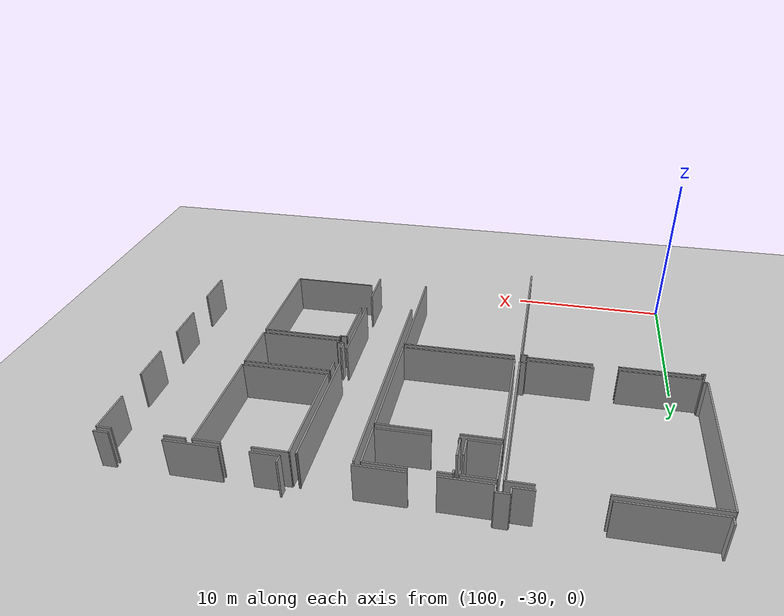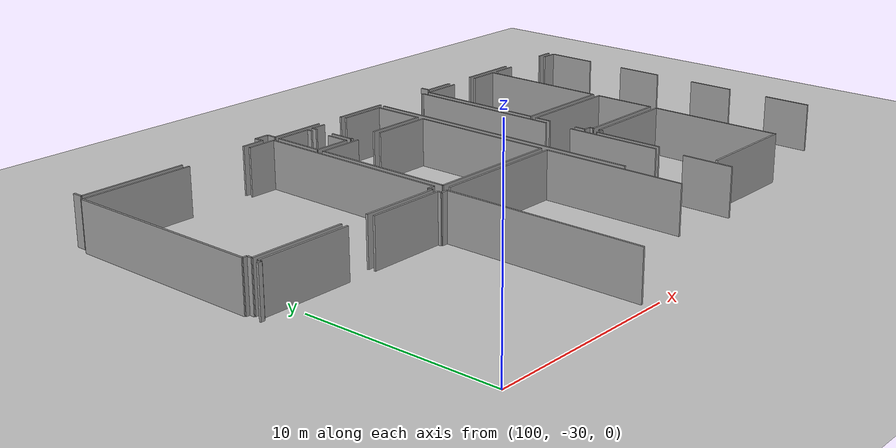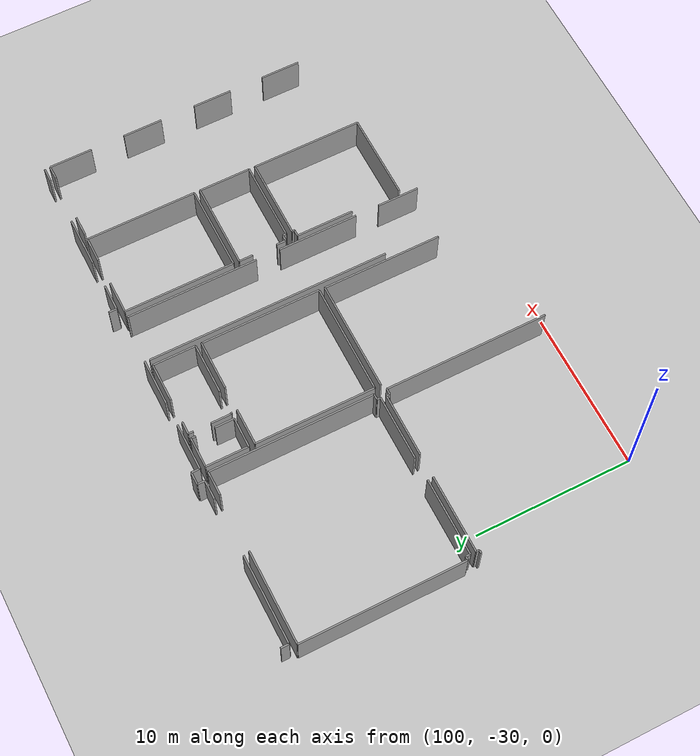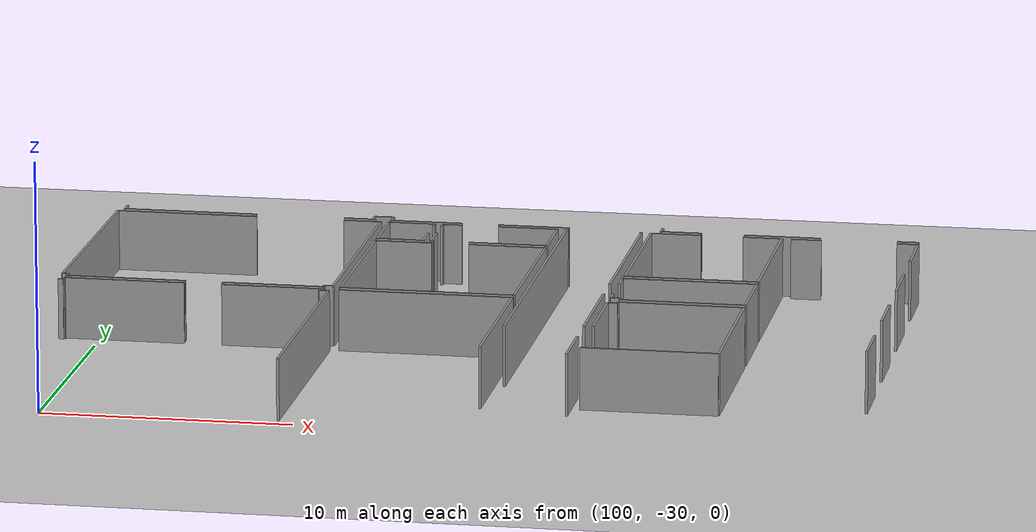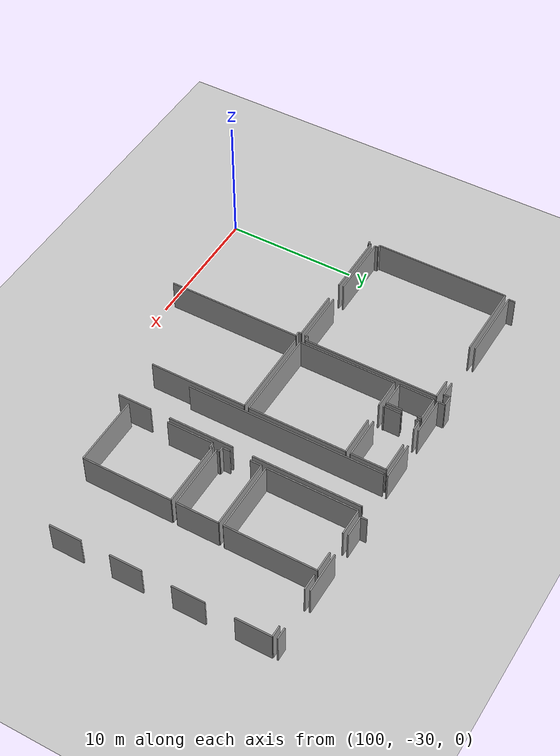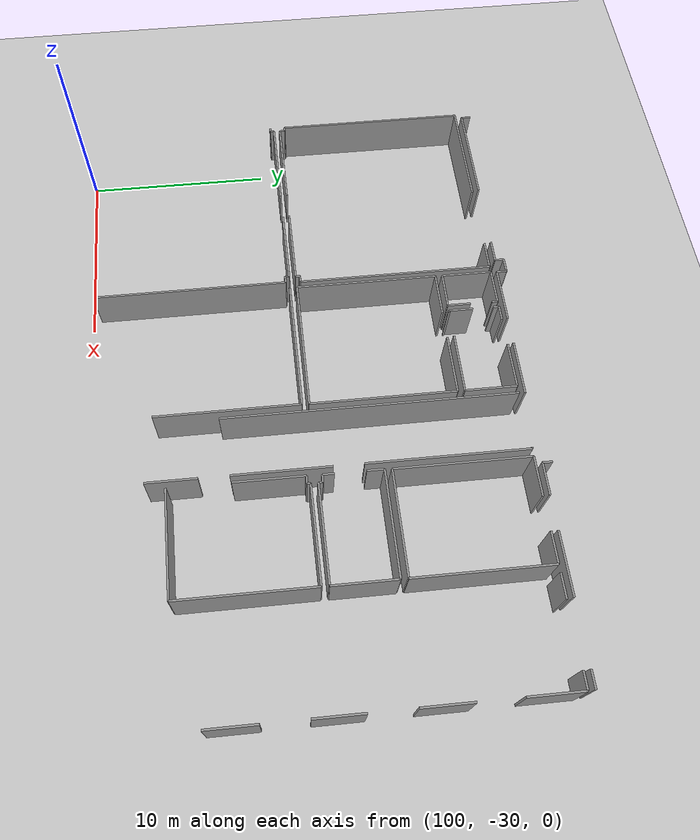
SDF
<sdf version="1.6">
 <world name="default">
  <model name="ground_plane">
   <static>1</static>
   <link name="link">
    <collision name="collision">
     <geometry><plane><normal>0 0 1</normal><size>100 100</size></plane></geometry>
     <surface><friction><ode><mu>100</mu><mu2>50</mu2></ode></friction></surface>
    </collision>
    <visual name="visual">
     <cast_shadows>0</cast_shadows>
     <geometry><plane><normal>0 0 1</normal><size>100 100</size></plane></geometry>
     <material>
      <script><uri>file://media/materials/scripts/gazebo.material</uri><name>Gazebo/Grey</name></script>
     </material>
    </visual>
   </link>
  </model>
  <model name="50015847">
   <static>1</static>
   <link name="Wall_845">
    <collision name="Wall_845_Collision">
     <geometry><box><size>1.25591091676 0.1 2.5</size></box></geometry>
     <pose>0.627955458382 0 1.25 0 0 0</pose>
    </collision>
    <visual name="Wall_845_Visual">
     <pose>0.627955458382 0 1.25 0 0 0</pose>
     <geometry><box><size>1.25591091676 0.1 2.5</size></box></geometry>
     <material>
      <script><uri>file://media/materials/scripts/gazebo.material</uri><name>Gazebo/Grey</name></script>
      <ambient>1 1 1 1</ambient>
     </material>
    </visual>
    <pose>258.724258911 -51.9181878273 0 0 0 0.0</pose>
   </link>
   <link name="Wall_846">
    <collision name="Wall_846_Collision">
     <geometry><box><size>0.869476788529 0.1 2.5</size></box></geometry>
     <pose>0.434738394265 0 1.25 0 0 0</pose>
    </collision>
    <visual name="Wall_846_Visual">
     <pose>0.434738394265 0 1.25 0 0 0</pose>
     <geometry><box><size>0.869476788529 0.1 2.5</size></box></geometry>
     <material>
      <script><uri>file://media/materials/scripts/gazebo.material</uri><name>Gazebo/Grey</name></script>
      <ambient>1 1 1 1</ambient>
     </material>
    </visual>
    <pose>263.064015864 -51.9181878273 0 0 0 0.0</pose>
   </link>
   <link name="Wall_847">
    <collision name="Wall_847_Collision">
     <geometry><box><size>2.7080896934 0.1 2.5</size></box></geometry>
     <pose>1.3540448467 0 1.25 0 0 0</pose>
    </collision>
    <visual name="Wall_847_Visual">
     <pose>1.3540448467 0 1.25 0 0 0</pose>
     <geometry><box><size>2.7080896934 0.1 2.5</size></box></geometry>
     <material>
      <script><uri>file://media/materials/scripts/gazebo.material</uri><name>Gazebo/Grey</name></script>
      <ambient>1 1 1 1</ambient>
     </material>
    </visual>
    <pose>263.933492653 -51.9181878273 0 0 0 -1.57079632679</pose>
   </link>
   <link name="Wall_848">
    <collision name="Wall_848_Collision">
     <geometry><box><size>2.50394061118 0.1 2.5</size></box></geometry>
     <pose>1.25197030559 0 1.25 0 0 0</pose>
    </collision>
    <visual name="Wall_848_Visual">
     <pose>1.25197030559 0 1.25 0 0 0</pose>
     <geometry><box><size>2.50394061118 0.1 2.5</size></box></geometry>
     <material>
      <script><uri>file://media/materials/scripts/gazebo.material</uri><name>Gazebo/Grey</name></script>
      <ambient>1 1 1 1</ambient>
     </material>
    </visual>
    <pose>263.933492653 -56.7778512229 0 0 0 -1.57079632679</pose>
   </link>
   <link name="Wall_849">
    <collision name="Wall_849_Collision">
     <geometry><box><size>2.44851782173 0.1 2.5</size></box></geometry>
     <pose>1.22425891087 0 1.25 0 0 0</pose>
    </collision>
    <visual name="Wall_849_Visual">
     <pose>1.22425891087 0 1.25 0 0 0</pose>
     <geometry><box><size>2.44851782173 0.1 2.5</size></box></geometry>
     <material>
      <script><uri>file://media/materials/scripts/gazebo.material</uri><name>Gazebo/Grey</name></script>
      <ambient>1 1 1 1</ambient>
     </material>
    </visual>
    <pose>263.933492653 -61.5068388671 0 0 0 -1.57079632679</pose>
   </link>
   <link name="Wall_850">
    <collision name="Wall_850_Collision">
     <geometry><box><size>2.48563583668 0.1 2.5</size></box></geometry>
     <pose>1.24281791834 0 1.25 0 0 0</pose>
    </collision>
    <visual name="Wall_850_Visual">
     <pose>1.24281791834 0 1.25 0 0 0</pose>
     <geometry><box><size>2.48563583668 0.1 2.5</size></box></geometry>
     <material>
      <script><uri>file://media/materials/scripts/gazebo.material</uri><name>Gazebo/Grey</name></script>
      <ambient>1 1 1 1</ambient>
     </material>
    </visual>
    <pose>263.933492653 -66.1529465602 0 0 0 -1.57079632679</pose>
   </link>
   <link name="Wall_853">
    <collision name="Wall_853_Collision">
     <geometry><box><size>6.98225453806 0.1 2.5</size></box></geometry>
     <pose>3.49112726903 0 1.25 0 0 0</pose>
    </collision>
    <visual name="Wall_853_Visual">
     <pose>3.49112726903 0 1.25 0 0 0</pose>
     <geometry><box><size>6.98225453806 0.1 2.5</size></box></geometry>
     <material>
      <script><uri>file://media/materials/scripts/gazebo.material</uri><name>Gazebo/Grey</name></script>
      <ambient>1 1 1 1</ambient>
     </material>
    </visual>
    <pose>252.953170285 -58.9019677633 0 0 0 1.57079632679</pose>
   </link>
   <link name="Wall_854">
    <collision name="Wall_854_Collision">
     <geometry><box><size>2.07454110947 0.1 2.5</size></box></geometry>
     <pose>1.03727055474 0 1.25 0 0 0</pose>
    </collision>
    <visual name="Wall_854_Visual">
     <pose>1.03727055474 0 1.25 0 0 0</pose>
     <geometry><box><size>2.07454110947 0.1 2.5</size></box></geometry>
     <material>
      <script><uri>file://media/materials/scripts/gazebo.material</uri><name>Gazebo/Grey</name></script>
      <ambient>1 1 1 1</ambient>
     </material>
    </visual>
    <pose>252.953170285 -51.9197132252 0 0 0 0.0</pose>
   </link>
   <link name="Wall_855">
    <collision name="Wall_855_Collision">
     <geometry><box><size>1.5864137896 0.1 2.5</size></box></geometry>
     <pose>0.793206894798 0 1.25 0 0 0</pose>
    </collision>
    <visual name="Wall_855_Visual">
     <pose>0.793206894798 0 1.25 0 0 0</pose>
     <geometry><box><size>1.5864137896 0.1 2.5</size></box></geometry>
     <material>
      <script><uri>file://media/materials/scripts/gazebo.material</uri><name>Gazebo/Grey</name></script>
      <ambient>1 1 1 1</ambient>
     </material>
    </visual>
    <pose>256.753953323 -51.9197132252 0 0 0 0.0</pose>
   </link>
   <link name="Wall_856">
    <collision name="Wall_856_Collision">
     <geometry><box><size>6.97716987848 0.1 2.5</size></box></geometry>
     <pose>3.48858493924 0 1.25 0 0 0</pose>
    </collision>
    <visual name="Wall_856_Visual">
     <pose>3.48858493924 0 1.25 0 0 0</pose>
     <geometry><box><size>6.97716987848 0.1 2.5</size></box></geometry>
     <material>
      <script><uri>file://media/materials/scripts/gazebo.material</uri><name>Gazebo/Grey</name></script>
      <ambient>1 1 1 1</ambient>
     </material>
    </visual>
    <pose>258.340367112 -51.9197132252 0 0 0 -1.57079632679</pose>
   </link>
   <link name="Wall_857">
    <collision name="Wall_857_Collision">
     <geometry><box><size>5.38719922673 0.1 2.5</size></box></geometry>
     <pose>2.69359961336 0 1.25 0 0 0</pose>
    </collision>
    <visual name="Wall_857_Visual">
     <pose>2.69359961336 0 1.25 0 0 0</pose>
     <geometry><box><size>5.38719922673 0.1 2.5</size></box></geometry>
     <material>
      <script><uri>file://media/materials/scripts/gazebo.material</uri><name>Gazebo/Grey</name></script>
      <ambient>1 1 1 1</ambient>
     </material>
    </visual>
    <pose>258.340367112 -58.8968831037 0 0 0 -3.14064881244</pose>
   </link>
   <link name="Wall_858">
    <collision name="Wall_858_Collision">
     <geometry><box><size>0.592362841308 0.1 2.5</size></box></geometry>
     <pose>0.296181420654 0 1.25 0 0 0</pose>
    </collision>
    <visual name="Wall_858_Visual">
     <pose>0.296181420654 0 1.25 0 0 0</pose>
     <geometry><box><size>0.592362841308 0.1 2.5</size></box></geometry>
     <material>
      <script><uri>file://media/materials/scripts/gazebo.material</uri><name>Gazebo/Grey</name></script>
      <ambient>1 1 1 1</ambient>
     </material>
    </visual>
    <pose>252.925204658 -62.311486246 0 0 0 1.57079632679</pose>
   </link>
   <link name="Wall_859">
    <collision name="Wall_859_Collision">
     <geometry><box><size>0.874561448111 0.1 2.5</size></box></geometry>
     <pose>0.437280724056 0 1.25 0 0 0</pose>
    </collision>
    <visual name="Wall_859_Visual">
     <pose>0.437280724056 0 1.25 0 0 0</pose>
     <geometry><box><size>0.874561448111 0.1 2.5</size></box></geometry>
     <material>
      <script><uri>file://media/materials/scripts/gazebo.material</uri><name>Gazebo/Grey</name></script>
      <ambient>1 1 1 1</ambient>
     </material>
    </visual>
    <pose>252.925204658 -60.1423704683 0 0 0 1.57079632679</pose>
   </link>
   <link name="Wall_860">
    <collision name="Wall_860_Collision">
     <geometry><box><size>5.41516245487 0.1 2.5</size></box></geometry>
     <pose>2.70758122744 0 1.25 0 0 0</pose>
    </collision>
    <visual name="Wall_860_Visual">
     <pose>2.70758122744 0 1.25 0 0 0</pose>
     <geometry><box><size>5.41516245487 0.1 2.5</size></box></geometry>
     <material>
      <script><uri>file://media/materials/scripts/gazebo.material</uri><name>Gazebo/Grey</name></script>
      <ambient>1 1 1 1</ambient>
     </material>
    </visual>
    <pose>252.925204658 -59.2678090202 0 0 0 0.0</pose>
   </link>
   <link name="Wall_861">
    <collision name="Wall_861_Collision">
     <geometry><box><size>3.27223267402 0.1 2.5</size></box></geometry>
     <pose>1.63611633701 0 1.25 0 0 0</pose>
    </collision>
    <visual name="Wall_861_Visual">
     <pose>1.63611633701 0 1.25 0 0 0</pose>
     <geometry><box><size>3.27223267402 0.1 2.5</size></box></geometry>
     <material>
      <script><uri>file://media/materials/scripts/gazebo.material</uri><name>Gazebo/Grey</name></script>
      <ambient>1 1 1 1</ambient>
     </material>
    </visual>
    <pose>258.340367112 -59.2678090202 0 0 0 -1.57079632679</pose>
   </link>
   <link name="Wall_862">
    <collision name="Wall_862_Collision">
     <geometry><box><size>5.02110133727 0.1 2.5</size></box></geometry>
     <pose>2.51055066863 0 1.25 0 0 0</pose>
    </collision>
    <visual name="Wall_862_Visual">
     <pose>2.51055066863 0 1.25 0 0 0</pose>
     <geometry><box><size>5.02110133727 0.1 2.5</size></box></geometry>
     <material>
      <script><uri>file://media/materials/scripts/gazebo.material</uri><name>Gazebo/Grey</name></script>
      <ambient>1 1 1 1</ambient>
     </material>
    </visual>
    <pose>258.340367112 -62.5400416942 0 0 0 3.14159265359</pose>
   </link>
   <link name="Wall_863">
    <collision name="Wall_863_Collision">
     <geometry><box><size>0.213047236488 0.1 2.5</size></box></geometry>
     <pose>0.106523618244 0 1.25 0 0 0</pose>
    </collision>
    <visual name="Wall_863_Visual">
     <pose>0.106523618244 0 1.25 0 0 0</pose>
     <geometry><box><size>0.213047236488 0.1 2.5</size></box></geometry>
     <material>
      <script><uri>file://media/materials/scripts/gazebo.material</uri><name>Gazebo/Grey</name></script>
      <ambient>1 1 1 1</ambient>
     </material>
    </visual>
    <pose>253.319265775 -62.5400416942 0 0 0 1.57079632679</pose>
   </link>
   <link name="Wall_864">
    <collision name="Wall_864_Collision">
     <geometry><box><size>0.394366161126 0.1 2.5</size></box></geometry>
     <pose>0.197183080563 0 1.25 0 0 0</pose>
    </collision>
    <visual name="Wall_864_Visual">
     <pose>0.197183080563 0 1.25 0 0 0</pose>
     <geometry><box><size>0.394366161126 0.1 2.5</size></box></geometry>
     <material>
      <script><uri>file://media/materials/scripts/gazebo.material</uri><name>Gazebo/Grey</name></script>
      <ambient>1 1 1 1</ambient>
     </material>
    </visual>
    <pose>253.319265775 -62.3269944577 0 0 0 3.10225811366</pose>
   </link>
   <link name="Wall_866">
    <collision name="Wall_866_Collision">
     <geometry><box><size>3.63070117456 0.1 2.5</size></box></geometry>
     <pose>1.81535058728 0 1.25 0 0 0</pose>
    </collision>
    <visual name="Wall_866_Visual">
     <pose>1.81535058728 0 1.25 0 0 0</pose>
     <geometry><box><size>3.63070117456 0.1 2.5</size></box></geometry>
     <material>
      <script><uri>file://media/materials/scripts/gazebo.material</uri><name>Gazebo/Grey</name></script>
      <ambient>1 1 1 1</ambient>
     </material>
    </visual>
    <pose>252.912493009 -66.7181064728 0 0 0 1.57079632679</pose>
   </link>
   <link name="Wall_867">
    <collision name="Wall_867_Collision">
     <geometry><box><size>0.406772766563 0.1 2.5</size></box></geometry>
     <pose>0.203386383282 0 1.25 0 0 0</pose>
    </collision>
    <visual name="Wall_867_Visual">
     <pose>0.203386383282 0 1.25 0 0 0</pose>
     <geometry><box><size>0.406772766563 0.1 2.5</size></box></geometry>
     <material>
      <script><uri>file://media/materials/scripts/gazebo.material</uri><name>Gazebo/Grey</name></script>
      <ambient>1 1 1 1</ambient>
     </material>
    </visual>
    <pose>252.912493009 -63.0874052982 0 0 0 0.0</pose>
   </link>
   <link name="Wall_868">
    <collision name="Wall_868_Collision">
     <geometry><box><size>0.163471805563 0.1 2.5</size></box></geometry>
     <pose>0.0817359027813 0 1.25 0 0 0</pose>
    </collision>
    <visual name="Wall_868_Visual">
     <pose>0.0817359027813 0 1.25 0 0 0</pose>
     <geometry><box><size>0.163471805563 0.1 2.5</size></box></geometry>
     <material>
      <script><uri>file://media/materials/scripts/gazebo.material</uri><name>Gazebo/Grey</name></script>
      <ambient>1 1 1 1</ambient>
     </material>
    </visual>
    <pose>253.319265775 -63.0874052982 0 0 0 1.57079632679</pose>
   </link>
   <link name="Wall_869">
    <collision name="Wall_869_Collision">
     <geometry><box><size>5.01601667768 0.1 2.5</size></box></geometry>
     <pose>2.50800833884 0 1.25 0 0 0</pose>
    </collision>
    <visual name="Wall_869_Visual">
     <pose>2.50800833884 0 1.25 0 0 0</pose>
     <geometry><box><size>5.01601667768 0.1 2.5</size></box></geometry>
     <material>
      <script><uri>file://media/materials/scripts/gazebo.material</uri><name>Gazebo/Grey</name></script>
      <ambient>1 1 1 1</ambient>
     </material>
    </visual>
    <pose>253.319265775 -62.9239334927 0 0 0 0.0</pose>
   </link>
   <link name="Wall_870">
    <collision name="Wall_870_Collision">
     <geometry><box><size>6.96191589973 0.1 2.5</size></box></geometry>
     <pose>3.48095794987 0 1.25 0 0 0</pose>
    </collision>
    <visual name="Wall_870_Visual">
     <pose>3.48095794987 0 1.25 0 0 0</pose>
     <geometry><box><size>6.96191589973 0.1 2.5</size></box></geometry>
     <material>
      <script><uri>file://media/materials/scripts/gazebo.material</uri><name>Gazebo/Grey</name></script>
      <ambient>1 1 1 1</ambient>
     </material>
    </visual>
    <pose>258.335282453 -62.9239334927 0 0 0 -1.57079632679</pose>
   </link>
   <link name="Wall_871">
    <collision name="Wall_871_Collision">
     <geometry><box><size>5.42280682217 0.1 2.5</size></box></geometry>
     <pose>2.71140341108 0 1.25 0 0 0</pose>
    </collision>
    <visual name="Wall_871_Visual">
     <pose>2.71140341108 0 1.25 0 0 0</pose>
     <geometry><box><size>5.42280682217 0.1 2.5</size></box></geometry>
     <material>
      <script><uri>file://media/materials/scripts/gazebo.material</uri><name>Gazebo/Grey</name></script>
      <ambient>1 1 1 1</ambient>
     </material>
    </visual>
    <pose>258.335282453 -69.8858493924 0 0 0 -3.13906101343</pose>
   </link>
   <link name="Wall_892">
    <collision name="Wall_892_Collision">
     <geometry><box><size>6.99649158489 0.1 2.5</size></box></geometry>
     <pose>3.49824579244 0 1.25 0 0 0</pose>
    </collision>
    <visual name="Wall_892_Visual">
     <pose>3.49824579244 0 1.25 0 0 0</pose>
     <geometry><box><size>6.99649158489 0.1 2.5</size></box></geometry>
     <material>
      <script><uri>file://media/materials/scripts/gazebo.material</uri><name>Gazebo/Grey</name></script>
      <ambient>1 1 1 1</ambient>
     </material>
    </visual>
    <pose>242.07199878 -62.9417298012 0 0 0 0.0</pose>
   </link>
   <link name="Wall_893">
    <collision name="Wall_893_Collision">
     <geometry><box><size>7.53495703463 0.1 2.5</size></box></geometry>
     <pose>3.76747851731 0 1.25 0 0 0</pose>
    </collision>
    <visual name="Wall_893_Visual">
     <pose>3.76747851731 0 1.25 0 0 0</pose>
     <geometry><box><size>7.53495703463 0.1 2.5</size></box></geometry>
     <material>
      <script><uri>file://media/materials/scripts/gazebo.material</uri><name>Gazebo/Grey</name></script>
      <ambient>1 1 1 1</ambient>
     </material>
    </visual>
    <pose>249.068490365 -62.9417298012 0 0 0 -1.57079632679</pose>
   </link>
   <link name="Wall_896">
    <collision name="Wall_896_Collision">
     <geometry><box><size>7.55148217827 0.1 2.5</size></box></geometry>
     <pose>3.77574108913 0 1.25 0 0 0</pose>
    </collision>
    <visual name="Wall_896_Visual">
     <pose>3.77574108913 0 1.25 0 0 0</pose>
     <geometry><box><size>7.55148217827 0.1 2.5</size></box></geometry>
     <material>
      <script><uri>file://media/materials/scripts/gazebo.material</uri><name>Gazebo/Grey</name></script>
      <ambient>1 1 1 1</ambient>
     </material>
    </visual>
    <pose>242.06437179 -62.5489398485 0 0 0 1.57079632679</pose>
   </link>
   <link name="Wall_897">
    <collision name="Wall_897_Collision">
     <geometry><box><size>2.33640107795 0.1 2.5</size></box></geometry>
     <pose>1.16820053897 0 1.25 0 0 0</pose>
    </collision>
    <visual name="Wall_897_Visual">
     <pose>1.16820053897 0 1.25 0 0 0</pose>
     <geometry><box><size>2.33640107795 0.1 2.5</size></box></geometry>
     <material>
      <script><uri>file://media/materials/scripts/gazebo.material</uri><name>Gazebo/Grey</name></script>
      <ambient>1 1 1 1</ambient>
     </material>
    </visual>
    <pose>242.06437179 -54.9974576702 0 0 0 0.0</pose>
   </link>
   <link name="Wall_898">
    <collision name="Wall_898_Collision">
     <geometry><box><size>3.14994661107 0.1 2.5</size></box></geometry>
     <pose>1.57497330554 0 1.25 0 0 0</pose>
    </collision>
    <visual name="Wall_898_Visual">
     <pose>1.57497330554 0 1.25 0 0 0</pose>
     <geometry><box><size>3.14994661107 0.1 2.5</size></box></geometry>
     <material>
      <script><uri>file://media/materials/scripts/gazebo.material</uri><name>Gazebo/Grey</name></script>
      <ambient>1 1 1 1</ambient>
     </material>
    </visual>
    <pose>245.931255402 -54.9974576702 0 0 0 0.0</pose>
   </link>
   <link name="Wall_899">
    <collision name="Wall_899_Collision">
     <geometry><box><size>7.57563431128 0.1 2.5</size></box></geometry>
     <pose>3.78781715564 0 1.25 0 0 0</pose>
    </collision>
    <visual name="Wall_899_Visual">
     <pose>3.78781715564 0 1.25 0 0 0</pose>
     <geometry><box><size>7.57563431128 0.1 2.5</size></box></geometry>
     <material>
      <script><uri>file://media/materials/scripts/gazebo.material</uri><name>Gazebo/Grey</name></script>
      <ambient>1 1 1 1</ambient>
     </material>
    </visual>
    <pose>249.081202014 -54.9974576702 0 0 0 -1.57079632679</pose>
   </link>
   <link name="Wall_900">
    <collision name="Wall_900_Collision">
     <geometry><box><size>7.01687178926 0.1 2.5</size></box></geometry>
     <pose>3.50843589463 0 1.25 0 0 0</pose>
    </collision>
    <visual name="Wall_900_Visual">
     <pose>3.50843589463 0 1.25 0 0 0</pose>
     <geometry><box><size>7.01687178926 0.1 2.5</size></box></geometry>
     <material>
      <script><uri>file://media/materials/scripts/gazebo.material</uri><name>Gazebo/Grey</name></script>
      <ambient>1 1 1 1</ambient>
     </material>
    </visual>
    <pose>249.081202014 -62.5730919815 0 0 0 3.1381506382</pose>
   </link>
   <link name="Wall_901">
    <collision name="Wall_901_Collision">
     <geometry><box><size>1.27904611786 0.1 2.5</size></box></geometry>
     <pose>0.639523058931 0 1.25 0 0 0</pose>
    </collision>
    <visual name="Wall_901_Visual">
     <pose>0.639523058931 0 1.25 0 0 0</pose>
     <geometry><box><size>1.27904611786 0.1 2.5</size></box></geometry>
     <material>
      <script><uri>file://media/materials/scripts/gazebo.material</uri><name>Gazebo/Grey</name></script>
      <ambient>1 1 1 1</ambient>
     </material>
    </visual>
    <pose>244.309248996 -54.6161082016 0 0 0 1.57079632679</pose>
   </link>
   <link name="Wall_902">
    <collision name="Wall_902_Collision">
     <geometry><box><size>0.301520313215 0.1 2.5</size></box></geometry>
     <pose>0.150760156608 0 1.25 0 0 0</pose>
    </collision>
    <visual name="Wall_902_Visual">
     <pose>0.150760156608 0 1.25 0 0 0</pose>
     <geometry><box><size>0.301520313215 0.1 2.5</size></box></geometry>
     <material>
      <script><uri>file://media/materials/scripts/gazebo.material</uri><name>Gazebo/Grey</name></script>
      <ambient>1 1 1 1</ambient>
     </material>
    </visual>
    <pose>244.309248996 -52.2316570906 0 0 0 1.57079632679</pose>
   </link>
   <link name="Wall_903">
    <collision name="Wall_903_Collision">
     <geometry><box><size>0.816087862918 0.1 2.5</size></box></geometry>
     <pose>0.408043931459 0 1.25 0 0 0</pose>
    </collision>
    <visual name="Wall_903_Visual">
     <pose>0.408043931459 0 1.25 0 0 0</pose>
     <geometry><box><size>0.816087862918 0.1 2.5</size></box></geometry>
     <material>
      <script><uri>file://media/materials/scripts/gazebo.material</uri><name>Gazebo/Grey</name></script>
      <ambient>1 1 1 1</ambient>
     </material>
    </visual>
    <pose>244.309248996 -51.9301367773 0 0 0 0.0</pose>
   </link>
   <link name="Wall_904">
    <collision name="Wall_904_Collision">
     <geometry><box><size>2.43809426959 0.1 2.5</size></box></geometry>
     <pose>1.21904713479 0 1.25 0 0 0</pose>
    </collision>
    <visual name="Wall_904_Visual">
     <pose>1.21904713479 0 1.25 0 0 0</pose>
     <geometry><box><size>2.43809426959 0.1 2.5</size></box></geometry>
     <material>
      <script><uri>file://media/materials/scripts/gazebo.material</uri><name>Gazebo/Grey</name></script>
      <ambient>1 1 1 1</ambient>
     </material>
    </visual>
    <pose>246.645650074 -51.9301367773 0 0 0 0.0</pose>
   </link>
   <link name="Wall_905">
    <collision name="Wall_905_Collision">
     <geometry><box><size>2.69842884019 0.1 2.5</size></box></geometry>
     <pose>1.34921442009 0 1.25 0 0 0</pose>
    </collision>
    <visual name="Wall_905_Visual">
     <pose>1.34921442009 0 1.25 0 0 0</pose>
     <geometry><box><size>2.69842884019 0.1 2.5</size></box></geometry>
     <material>
      <script><uri>file://media/materials/scripts/gazebo.material</uri><name>Gazebo/Grey</name></script>
      <ambient>1 1 1 1</ambient>
     </material>
    </visual>
    <pose>249.083744343 -51.9301367773 0 0 0 -1.57079632679</pose>
   </link>
   <link name="Wall_906">
    <collision name="Wall_906_Collision">
     <geometry><box><size>3.21096252606 0.1 2.5</size></box></geometry>
     <pose>1.60548126303 0 1.25 0 0 0</pose>
    </collision>
    <visual name="Wall_906_Visual">
     <pose>1.60548126303 0 1.25 0 0 0</pose>
     <geometry><box><size>3.21096252606 0.1 2.5</size></box></geometry>
     <material>
      <script><uri>file://media/materials/scripts/gazebo.material</uri><name>Gazebo/Grey</name></script>
      <ambient>1 1 1 1</ambient>
     </material>
    </visual>
    <pose>249.083744343 -54.6285656175 0 0 0 3.14159265359</pose>
   </link>
   <link name="Wall_907">
    <collision name="Wall_907_Collision">
     <geometry><box><size>0.0999303788563 0.1 2.5</size></box></geometry>
     <pose>0.0499651894281 0 1.25 0 0 0</pose>
    </collision>
    <visual name="Wall_907_Visual">
     <pose>0.0499651894281 0 1.25 0 0 0</pose>
     <geometry><box><size>0.0999303788563 0.1 2.5</size></box></geometry>
     <material>
      <script><uri>file://media/materials/scripts/gazebo.material</uri><name>Gazebo/Grey</name></script>
      <ambient>1 1 1 1</ambient>
     </material>
    </visual>
    <pose>244.408399858 -54.6285656175 0 0 0 3.01660654521</pose>
   </link>
   <link name="Wall_908">
    <collision name="Wall_908_Collision">
     <geometry><box><size>2.67707326994 0.1 2.5</size></box></geometry>
     <pose>1.33853663497 0 1.25 0 0 0</pose>
    </collision>
    <visual name="Wall_908_Visual">
     <pose>1.33853663497 0 1.25 0 0 0</pose>
     <geometry><box><size>2.67707326994 0.1 2.5</size></box></geometry>
     <material>
      <script><uri>file://media/materials/scripts/gazebo.material</uri><name>Gazebo/Grey</name></script>
      <ambient>1 1 1 1</ambient>
     </material>
    </visual>
    <pose>242.07199878 -54.6161082016 0 0 0 1.57079632679</pose>
   </link>
   <link name="Wall_909">
    <collision name="Wall_909_Collision">
     <geometry><box><size>1.90674734327 0.1 2.5</size></box></geometry>
     <pose>0.953373671633 0 1.25 0 0 0</pose>
    </collision>
    <visual name="Wall_909_Visual">
     <pose>0.953373671633 0 1.25 0 0 0</pose>
     <geometry><box><size>1.90674734327 0.1 2.5</size></box></geometry>
     <material>
      <script><uri>file://media/materials/scripts/gazebo.material</uri><name>Gazebo/Grey</name></script>
      <ambient>1 1 1 1</ambient>
     </material>
    </visual>
    <pose>242.07199878 -51.9390349316 0 0 0 0.0</pose>
   </link>
   <link name="Wall_910">
    <collision name="Wall_910_Collision">
     <geometry><box><size>0.301266080236 0.1 2.5</size></box></geometry>
     <pose>0.150633040118 0 1.25 0 0 0</pose>
    </collision>
    <visual name="Wall_910_Visual">
     <pose>0.150633040118 0 1.25 0 0 0</pose>
     <geometry><box><size>0.301266080236 0.1 2.5</size></box></geometry>
     <material>
      <script><uri>file://media/materials/scripts/gazebo.material</uri><name>Gazebo/Grey</name></script>
      <ambient>1 1 1 1</ambient>
     </material>
    </visual>
    <pose>243.978746123 -51.9390349316 0 0 0 -1.57079632679</pose>
   </link>
   <link name="Wall_911">
    <collision name="Wall_911_Collision">
     <geometry><box><size>1.22031829969 0.1 2.5</size></box></geometry>
     <pose>0.610159149845 0 1.25 0 0 0</pose>
    </collision>
    <visual name="Wall_911_Visual">
     <pose>0.610159149845 0 1.25 0 0 0</pose>
     <geometry><box><size>1.22031829969 0.1 2.5</size></box></geometry>
     <material>
      <script><uri>file://media/materials/scripts/gazebo.material</uri><name>Gazebo/Grey</name></script>
      <ambient>1 1 1 1</ambient>
     </material>
    </visual>
    <pose>243.978746123 -53.4135862104 0 0 0 -1.57079632679</pose>
   </link>
   <link name="Wall_912">
    <collision name="Wall_912_Collision">
     <geometry><box><size>1.9068303909 0.1 2.5</size></box></geometry>
     <pose>0.953415195448 0 1.25 0 0 0</pose>
    </collision>
    <visual name="Wall_912_Visual">
     <pose>0.953415195448 0 1.25 0 0 0</pose>
     <geometry><box><size>1.9068303909 0.1 2.5</size></box></geometry>
     <material>
      <script><uri>file://media/materials/scripts/gazebo.material</uri><name>Gazebo/Grey</name></script>
      <ambient>1 1 1 1</ambient>
     </material>
    </visual>
    <pose>243.978746123 -54.6339045101 0 0 0 3.13225959125</pose>
   </link>
   <link name="Wall_913">
    <collision name="Wall_913_Collision">
     <geometry><box><size>15.243046728 0.1 2.5</size></box></geometry>
     <pose>7.62152336401 0 1.25 0 0 0</pose>
    </collision>
    <visual name="Wall_913_Visual">
     <pose>7.62152336401 0 1.25 0 0 0</pose>
     <geometry><box><size>15.243046728 0.1 2.5</size></box></geometry>
     <material>
      <script><uri>file://media/materials/scripts/gazebo.material</uri><name>Gazebo/Grey</name></script>
      <ambient>1 1 1 1</ambient>
     </material>
    </visual>
    <pose>249.467636142 -67.1444551787 0 0 0 1.57079632679</pose>
   </link>
   <link name="Wall_914">
    <collision name="Wall_914_Collision">
     <geometry><box><size>0.0737275639396 0.1 2.5</size></box></geometry>
     <pose>0.0368637819698 0 1.25 0 0 0</pose>
    </collision>
    <visual name="Wall_914_Visual">
     <pose>0.0368637819698 0 1.25 0 0 0</pose>
     <geometry><box><size>0.0737275639396 0.1 2.5</size></box></geometry>
     <material>
      <script><uri>file://media/materials/scripts/gazebo.material</uri><name>Gazebo/Grey</name></script>
      <ambient>1 1 1 1</ambient>
     </material>
    </visual>
    <pose>252.477754614 -51.9014084507 0 0 0 0.0</pose>
   </link>
   <link name="Wall_915">
    <collision name="Wall_915_Collision">
     <geometry><box><size>8.2956221081 0.1 2.5</size></box></geometry>
     <pose>4.14781105405 0 1.25 0 0 0</pose>
    </collision>
    <visual name="Wall_915_Visual">
     <pose>4.14781105405 0 1.25 0 0 0</pose>
     <geometry><box><size>8.2956221081 0.1 2.5</size></box></geometry>
     <material>
      <script><uri>file://media/materials/scripts/gazebo.material</uri><name>Gazebo/Grey</name></script>
      <ambient>1 1 1 1</ambient>
     </material>
    </visual>
    <pose>252.551482178 -51.9014084507 0 0 0 -1.57079632679</pose>
   </link>
   <link name="Wall_916">
    <collision name="Wall_916_Collision">
     <geometry><box><size>5.05288045965 0.1 2.5</size></box></geometry>
     <pose>2.52644022983 0 1.25 0 0 0</pose>
    </collision>
    <visual name="Wall_916_Visual">
     <pose>2.52644022983 0 1.25 0 0 0</pose>
     <geometry><box><size>5.05288045965 0.1 2.5</size></box></geometry>
     <material>
      <script><uri>file://media/materials/scripts/gazebo.material</uri><name>Gazebo/Grey</name></script>
      <ambient>1 1 1 1</ambient>
     </material>
    </visual>
    <pose>252.551482178 -61.7315808207 0 0 0 -1.57079632679</pose>
   </link>
   <link name="Wall_917">
    <collision name="Wall_917_Collision">
     <geometry><box><size>2.62749783902 0.1 2.5</size></box></geometry>
     <pose>1.31374891951 0 1.25 0 0 0</pose>
    </collision>
    <visual name="Wall_917_Visual">
     <pose>1.31374891951 0 1.25 0 0 0</pose>
     <geometry><box><size>2.62749783902 0.1 2.5</size></box></geometry>
     <material>
      <script><uri>file://media/materials/scripts/gazebo.material</uri><name>Gazebo/Grey</name></script>
      <ambient>1 1 1 1</ambient>
     </material>
    </visual>
    <pose>252.551482178 -68.3159607464 0 0 0 -1.57079632679</pose>
   </link>
   <link name="Wall_925">
    <collision name="Wall_925_Collision">
     <geometry><box><size>10.3238928154 0.1 2.5</size></box></geometry>
     <pose>5.16194640769 0 1.25 0 0 0</pose>
    </collision>
    <visual name="Wall_925_Visual">
     <pose>5.16194640769 0 1.25 0 0 0</pose>
     <geometry><box><size>10.3238928154 0.1 2.5</size></box></geometry>
     <material>
      <script><uri>file://media/materials/scripts/gazebo.material</uri><name>Gazebo/Grey</name></script>
      <ambient>1 1 1 1</ambient>
     </material>
    </visual>
    <pose>230.674734327 -62.2636904459 0 0 0 1.57079632679</pose>
   </link>
   <link name="Wall_926">
    <collision name="Wall_926_Collision">
     <geometry><box><size>5.8600701683 0.1 2.5</size></box></geometry>
     <pose>2.93003508415 0 1.25 0 0 0</pose>
    </collision>
    <visual name="Wall_926_Visual">
     <pose>2.93003508415 0 1.25 0 0 0</pose>
     <geometry><box><size>5.8600701683 0.1 2.5</size></box></geometry>
     <material>
      <script><uri>file://media/materials/scripts/gazebo.material</uri><name>Gazebo/Grey</name></script>
      <ambient>1 1 1 1</ambient>
     </material>
    </visual>
    <pose>230.674734327 -51.9397976305 0 0 0 0.0</pose>
   </link>
   <link name="Wall_927">
    <collision name="Wall_927_Collision">
     <geometry><box><size>1.54573651294 0.1 2.5</size></box></geometry>
     <pose>0.77286825647 0 1.25 0 0 0</pose>
    </collision>
    <visual name="Wall_927_Visual">
     <pose>0.77286825647 0 1.25 0 0 0</pose>
     <geometry><box><size>1.54573651294 0.1 2.5</size></box></geometry>
     <material>
      <script><uri>file://media/materials/scripts/gazebo.material</uri><name>Gazebo/Grey</name></script>
      <ambient>1 1 1 1</ambient>
     </material>
    </visual>
    <pose>240.180505415 -51.9397976305 0 0 0 0.0</pose>
   </link>
   <link name="Wall_928">
    <collision name="Wall_928_Collision">
     <geometry><box><size>10.3910103219 0.1 2.5</size></box></geometry>
     <pose>5.19550516093 0 1.25 0 0 0</pose>
    </collision>
    <visual name="Wall_928_Visual">
     <pose>5.19550516093 0 1.25 0 0 0</pose>
     <geometry><box><size>10.3910103219 0.1 2.5</size></box></geometry>
     <material>
      <script><uri>file://media/materials/scripts/gazebo.material</uri><name>Gazebo/Grey</name></script>
      <ambient>1 1 1 1</ambient>
     </material>
    </visual>
    <pose>241.726241928 -51.9397976305 0 0 0 -1.57079632679</pose>
   </link>
   <link name="Wall_929">
    <collision name="Wall_929_Collision">
     <geometry><box><size>0.366095489907 0.1 2.5</size></box></geometry>
     <pose>0.183047744953 0 1.25 0 0 0</pose>
    </collision>
    <visual name="Wall_929_Visual">
     <pose>0.183047744953 0 1.25 0 0 0</pose>
     <geometry><box><size>0.366095489907 0.1 2.5</size></box></geometry>
     <material>
      <script><uri>file://media/materials/scripts/gazebo.material</uri><name>Gazebo/Grey</name></script>
      <ambient>1 1 1 1</ambient>
     </material>
    </visual>
    <pose>241.726241928 -62.3308079524 0 0 0 3.14159265359</pose>
   </link>
   <link name="Wall_930">
    <collision name="Wall_930_Collision">
     <geometry><box><size>0.22931814715 0.1 2.5</size></box></geometry>
     <pose>0.114659073575 0 1.25 0 0 0</pose>
    </collision>
    <visual name="Wall_930_Visual">
     <pose>0.114659073575 0 1.25 0 0 0</pose>
     <geometry><box><size>0.22931814715 0.1 2.5</size></box></geometry>
     <material>
      <script><uri>file://media/materials/scripts/gazebo.material</uri><name>Gazebo/Grey</name></script>
      <ambient>1 1 1 1</ambient>
     </material>
    </visual>
    <pose>241.360146438 -62.3308079524 0 0 0 -1.57079632679</pose>
   </link>
   <link name="Wall_931">
    <collision name="Wall_931_Collision">
     <geometry><box><size>4.11348960187 0.1 2.5</size></box></geometry>
     <pose>2.05674480094 0 1.25 0 0 0</pose>
    </collision>
    <visual name="Wall_931_Visual">
     <pose>2.05674480094 0 1.25 0 0 0</pose>
     <geometry><box><size>4.11348960187 0.1 2.5</size></box></geometry>
     <material>
      <script><uri>file://media/materials/scripts/gazebo.material</uri><name>Gazebo/Grey</name></script>
      <ambient>1 1 1 1</ambient>
     </material>
    </visual>
    <pose>241.360146438 -62.5601260996 0 0 0 3.14159265359</pose>
   </link>
   <link name="Wall_932">
    <collision name="Wall_932_Collision">
     <geometry><box><size>4.86093456043 0.1 2.5</size></box></geometry>
     <pose>2.43046728022 0 1.25 0 0 0</pose>
    </collision>
    <visual name="Wall_932_Visual">
     <pose>2.43046728022 0 1.25 0 0 0</pose>
     <geometry><box><size>4.86093456043 0.1 2.5</size></box></geometry>
     <material>
      <script><uri>file://media/materials/scripts/gazebo.material</uri><name>Gazebo/Grey</name></script>
      <ambient>1 1 1 1</ambient>
     </material>
    </visual>
    <pose>235.767020898 -62.5601260996 0 0 0 3.14159265359</pose>
   </link>
   <link name="Wall_933">
    <collision name="Wall_933_Collision">
     <geometry><box><size>0.272283520618 0.1 2.5</size></box></geometry>
     <pose>0.136141760309 0 1.25 0 0 0</pose>
    </collision>
    <visual name="Wall_933_Visual">
     <pose>0.136141760309 0 1.25 0 0 0</pose>
     <geometry><box><size>0.272283520618 0.1 2.5</size></box></geometry>
     <material>
      <script><uri>file://media/materials/scripts/gazebo.material</uri><name>Gazebo/Grey</name></script>
      <ambient>1 1 1 1</ambient>
     </material>
    </visual>
    <pose>230.906086338 -62.5601260996 0 0 0 1.57079632679</pose>
   </link>
   <link name="Wall_934">
    <collision name="Wall_934_Collision">
     <geometry><box><size>0.232609282951 0.1 2.5</size></box></geometry>
     <pose>0.116304641475 0 1.25 0 0 0</pose>
    </collision>
    <visual name="Wall_934_Visual">
     <pose>0.116304641475 0 1.25 0 0 0</pose>
     <geometry><box><size>0.232609282951 0.1 2.5</size></box></geometry>
     <material>
      <script><uri>file://media/materials/scripts/gazebo.material</uri><name>Gazebo/Grey</name></script>
      <ambient>1 1 1 1</ambient>
     </material>
    </visual>
    <pose>230.906086338 -62.2878425789 0 0 0 3.03757383822</pose>
   </link>
   <link name="Wall_936">
    <collision name="Wall_936_Collision">
     <geometry><box><size>0.208471042864 0.1 2.5</size></box></geometry>
     <pose>0.104235521432 0 1.25 0 0 0</pose>
    </collision>
    <visual name="Wall_936_Visual">
     <pose>0.104235521432 0 1.25 0 0 0</pose>
     <geometry><box><size>0.208471042864 0.1 2.5</size></box></geometry>
     <material>
      <script><uri>file://media/materials/scripts/gazebo.material</uri><name>Gazebo/Grey</name></script>
      <ambient>1 1 1 1</ambient>
     </material>
    </visual>
    <pose>230.682361316 -63.1110489653 0 0 0 0.0</pose>
   </link>
   <link name="Wall_937">
    <collision name="Wall_937_Collision">
     <geometry><box><size>0.199318655616 0.1 2.5</size></box></geometry>
     <pose>0.099659327808 0 1.25 0 0 0</pose>
    </collision>
    <visual name="Wall_937_Visual">
     <pose>0.099659327808 0 1.25 0 0 0</pose>
     <geometry><box><size>0.199318655616 0.1 2.5</size></box></geometry>
     <material>
      <script><uri>file://media/materials/scripts/gazebo.material</uri><name>Gazebo/Grey</name></script>
      <ambient>1 1 1 1</ambient>
     </material>
    </visual>
    <pose>230.890832359 -63.1110489653 0 0 0 1.57079632679</pose>
   </link>
   <link name="Wall_938">
    <collision name="Wall_938_Collision">
     <geometry><box><size>4.89398484771 0.1 2.5</size></box></geometry>
     <pose>2.44699242386 0 1.25 0 0 0</pose>
    </collision>
    <visual name="Wall_938_Visual">
     <pose>2.44699242386 0 1.25 0 0 0</pose>
     <geometry><box><size>4.89398484771 0.1 2.5</size></box></geometry>
     <material>
      <script><uri>file://media/materials/scripts/gazebo.material</uri><name>Gazebo/Grey</name></script>
      <ambient>1 1 1 1</ambient>
     </material>
    </visual>
    <pose>230.890832359 -62.9117303097 0 0 0 0.0</pose>
   </link>
   <link name="Wall_939">
    <collision name="Wall_939_Collision">
     <geometry><box><size>4.01433874002 0.1 2.5</size></box></geometry>
     <pose>2.00716937001 0 1.25 0 0 0</pose>
    </collision>
    <visual name="Wall_939_Visual">
     <pose>2.00716937001 0 1.25 0 0 0</pose>
     <geometry><box><size>4.01433874002 0.1 2.5</size></box></geometry>
     <material>
      <script><uri>file://media/materials/scripts/gazebo.material</uri><name>Gazebo/Grey</name></script>
      <ambient>1 1 1 1</ambient>
     </material>
    </visual>
    <pose>237.312757411 -62.9117303097 0 0 0 0.0</pose>
   </link>
   <link name="Wall_940">
    <collision name="Wall_940_Collision">
     <geometry><box><size>0.216098032237 0.1 2.5</size></box></geometry>
     <pose>0.108049016118 0 1.25 0 0 0</pose>
    </collision>
    <visual name="Wall_940_Visual">
     <pose>0.108049016118 0 1.25 0 0 0</pose>
     <geometry><box><size>0.216098032237 0.1 2.5</size></box></geometry>
     <material>
      <script><uri>file://media/materials/scripts/gazebo.material</uri><name>Gazebo/Grey</name></script>
      <ambient>1 1 1 1</ambient>
     </material>
    </visual>
    <pose>241.327096151 -62.9117303097 0 0 0 -1.57079632679</pose>
   </link>
   <link name="Wall_941">
    <collision name="Wall_941_Collision">
     <geometry><box><size>0.366095489907 0.1 2.5</size></box></geometry>
     <pose>0.183047744954 0 1.25 0 0 0</pose>
    </collision>
    <visual name="Wall_941_Visual">
     <pose>0.183047744954 0 1.25 0 0 0</pose>
     <geometry><box><size>0.366095489907 0.1 2.5</size></box></geometry>
     <material>
      <script><uri>file://media/materials/scripts/gazebo.material</uri><name>Gazebo/Grey</name></script>
      <ambient>1 1 1 1</ambient>
     </material>
    </visual>
    <pose>241.327096151 -63.1278283419 0 0 0 0.0</pose>
   </link>
   <link name="Wall_942">
    <collision name="Wall_942_Collision">
     <geometry><box><size>10.3625362282 0.1 2.5</size></box></geometry>
     <pose>5.1812681141 0 1.25 0 0 0</pose>
    </collision>
    <visual name="Wall_942_Visual">
     <pose>5.1812681141 0 1.25 0 0 0</pose>
     <geometry><box><size>10.3625362282 0.1 2.5</size></box></geometry>
     <material>
      <script><uri>file://media/materials/scripts/gazebo.material</uri><name>Gazebo/Grey</name></script>
      <ambient>1 1 1 1</ambient>
     </material>
    </visual>
    <pose>241.693191641 -63.1278283419 0 0 0 -1.57079632679</pose>
   </link>
   <link name="Wall_1181">
    <collision name="Wall_1181_Collision">
     <geometry><box><size>0.879646107693 0.1 2.5</size></box></geometry>
     <pose>0.439823053847 0 1.25 0 0 0</pose>
    </collision>
    <visual name="Wall_1181_Visual">
     <pose>0.439823053847 0 1.25 0 0 0</pose>
     <geometry><box><size>0.879646107693 0.1 2.5</size></box></geometry>
     <material>
      <script><uri>file://media/materials/scripts/gazebo.material</uri><name>Gazebo/Grey</name></script>
      <ambient>1 1 1 1</ambient>
     </material>
    </visual>
    <pose>263.920781004 -51.5678547821 0 0 0 3.14159265359</pose>
   </link>
   <link name="Wall_1182">
    <collision name="Wall_1182_Collision">
     <geometry><box><size>3.16011593024 0.1 2.5</size></box></geometry>
     <pose>1.58005796512 0 1.25 0 0 0</pose>
    </collision>
    <visual name="Wall_1182_Visual">
     <pose>1.58005796512 0 1.25 0 0 0</pose>
     <geometry><box><size>3.16011593024 0.1 2.5</size></box></geometry>
     <material>
      <script><uri>file://media/materials/scripts/gazebo.material</uri><name>Gazebo/Grey</name></script>
      <ambient>1 1 1 1</ambient>
     </material>
    </visual>
    <pose>259.906442264 -51.5678547821 0 0 0 3.14159265359</pose>
   </link>
   <link name="Wall_1183">
    <collision name="Wall_1183_Collision">
     <geometry><box><size>1.67539533228 0.1 2.5</size></box></geometry>
     <pose>0.837697666141 0 1.25 0 0 0</pose>
    </collision>
    <visual name="Wall_1183_Visual">
     <pose>0.837697666141 0 1.25 0 0 0</pose>
     <geometry><box><size>1.67539533228 0.1 2.5</size></box></geometry>
     <material>
      <script><uri>file://media/materials/scripts/gazebo.material</uri><name>Gazebo/Grey</name></script>
      <ambient>1 1 1 1</ambient>
     </material>
    </visual>
    <pose>254.999745767 -51.5678547821 0 0 0 3.14159265359</pose>
   </link>
   <link name="Wall_1184">
    <collision name="Wall_1184_Collision">
     <geometry><box><size>0.502618599685 0.1 2.5</size></box></geometry>
     <pose>0.251309299842 0 1.25 0 0 0</pose>
    </collision>
    <visual name="Wall_1184_Visual">
     <pose>0.251309299842 0 1.25 0 0 0</pose>
     <geometry><box><size>0.502618599685 0.1 2.5</size></box></geometry>
     <material>
      <script><uri>file://media/materials/scripts/gazebo.material</uri><name>Gazebo/Grey</name></script>
      <ambient>1 1 1 1</ambient>
     </material>
    </visual>
    <pose>253.324350435 -51.5678547821 0 0 0 1.57079632679</pose>
   </link>
   <link name="Wall_1187">
    <collision name="Wall_1187_Collision">
     <geometry><box><size>2.944017898 0.1 2.5</size></box></geometry>
     <pose>1.472008949 0 1.25 0 0 0</pose>
    </collision>
    <visual name="Wall_1187_Visual">
     <pose>1.472008949 0 1.25 0 0 0</pose>
     <geometry><box><size>2.944017898 0.1 2.5</size></box></geometry>
     <material>
      <script><uri>file://media/materials/scripts/gazebo.material</uri><name>Gazebo/Grey</name></script>
      <ambient>1 1 1 1</ambient>
     </material>
    </visual>
    <pose>249.523567397 -51.6146336503 0 0 0 3.14159265359</pose>
   </link>
   <link name="Wall_1188">
    <collision name="Wall_1188_Collision">
     <geometry><box><size>2.96689886612 0.1 2.5</size></box></geometry>
     <pose>1.48344943306 0 1.25 0 0 0</pose>
    </collision>
    <visual name="Wall_1188_Visual">
     <pose>1.48344943306 0 1.25 0 0 0</pose>
     <geometry><box><size>2.96689886612 0.1 2.5</size></box></geometry>
     <material>
      <script><uri>file://media/materials/scripts/gazebo.material</uri><name>Gazebo/Grey</name></script>
      <ambient>1 1 1 1</ambient>
     </material>
    </visual>
    <pose>245.077032593 -51.6146336503 0 0 0 3.14159265359</pose>
   </link>
   <link name="Wall_1189">
    <collision name="Wall_1189_Collision">
     <geometry><box><size>0.52956729547 0.1 2.5</size></box></geometry>
     <pose>0.264783647735 0 1.25 0 0 0</pose>
    </collision>
    <visual name="Wall_1189_Visual">
     <pose>0.264783647735 0 1.25 0 0 0</pose>
     <geometry><box><size>0.52956729547 0.1 2.5</size></box></geometry>
     <material>
      <script><uri>file://media/materials/scripts/gazebo.material</uri><name>Gazebo/Grey</name></script>
      <ambient>1 1 1 1</ambient>
     </material>
    </visual>
    <pose>242.110133727 -51.6146336503 0 0 0 1.57079632679</pose>
   </link>
   <link name="Wall_1190">
    <collision name="Wall_1190_Collision">
     <geometry><box><size>0.783037575634 0.1 2.5</size></box></geometry>
     <pose>0.391518787817 0 1.25 0 0 0</pose>
    </collision>
    <visual name="Wall_1190_Visual">
     <pose>0.391518787817 0 1.25 0 0 0</pose>
     <geometry><box><size>0.783037575634 0.1 2.5</size></box></geometry>
     <material>
      <script><uri>file://media/materials/scripts/gazebo.material</uri><name>Gazebo/Grey</name></script>
      <ambient>1 1 1 1</ambient>
     </material>
    </visual>
    <pose>242.110133727 -51.0850663548 0 0 0 3.14159265359</pose>
   </link>
   <link name="Wall_1191">
    <collision name="Wall_1191_Collision">
     <geometry><box><size>0.473890273046 0.1 2.5</size></box></geometry>
     <pose>0.236945136523 0 1.25 0 0 0</pose>
    </collision>
    <visual name="Wall_1191_Visual">
     <pose>0.236945136523 0 1.25 0 0 0</pose>
     <geometry><box><size>0.473890273046 0.1 2.5</size></box></geometry>
     <material>
      <script><uri>file://media/materials/scripts/gazebo.material</uri><name>Gazebo/Grey</name></script>
      <ambient>1 1 1 1</ambient>
     </material>
    </visual>
    <pose>241.327096151 -51.0850663548 0 0 0 -1.57079632679</pose>
   </link>
   <link name="Wall_1192">
    <collision name="Wall_1192_Collision">
     <geometry><box><size>1.19997966136 0.1 2.5</size></box></geometry>
     <pose>0.599989830681 0 1.25 0 0 0</pose>
    </collision>
    <visual name="Wall_1192_Visual">
     <pose>0.599989830681 0 1.25 0 0 0</pose>
     <geometry><box><size>1.19997966136 0.1 2.5</size></box></geometry>
     <material>
      <script><uri>file://media/materials/scripts/gazebo.material</uri><name>Gazebo/Grey</name></script>
      <ambient>1 1 1 1</ambient>
     </material>
    </visual>
    <pose>241.327096151 -51.5589566279 0 0 0 3.14159265359</pose>
   </link>
   <link name="Wall_1193">
    <collision name="Wall_1193_Collision">
     <geometry><box><size>5.54227894442 0.1 2.5</size></box></geometry>
     <pose>2.77113947221 0 1.25 0 0 0</pose>
    </collision>
    <visual name="Wall_1193_Visual">
     <pose>2.77113947221 0 1.25 0 0 0</pose>
     <geometry><box><size>5.54227894442 0.1 2.5</size></box></geometry>
     <material>
      <script><uri>file://media/materials/scripts/gazebo.material</uri><name>Gazebo/Grey</name></script>
      <ambient>1 1 1 1</ambient>
     </material>
    </visual>
    <pose>236.440738293 -51.5589566279 0 0 0 3.14159265359</pose>
   </link>
   <link name="Wall_1194">
    <collision name="Wall_1194_Collision">
     <geometry><box><size>0.508211725225 0.1 2.5</size></box></geometry>
     <pose>0.254105862612 0 1.25 0 0 0</pose>
    </collision>
    <visual name="Wall_1194_Visual">
     <pose>0.254105862612 0 1.25 0 0 0</pose>
     <geometry><box><size>0.508211725225 0.1 2.5</size></box></geometry>
     <material>
      <script><uri>file://media/materials/scripts/gazebo.material</uri><name>Gazebo/Grey</name></script>
      <ambient>1 1 1 1</ambient>
     </material>
    </visual>
    <pose>230.898459348 -51.5589566279 0 0 0 1.57079632679</pose>
   </link>
   <pose>-132.35 43.9162226064 0 0 0 0</pose>
  </model>
 </world>
</sdf>
